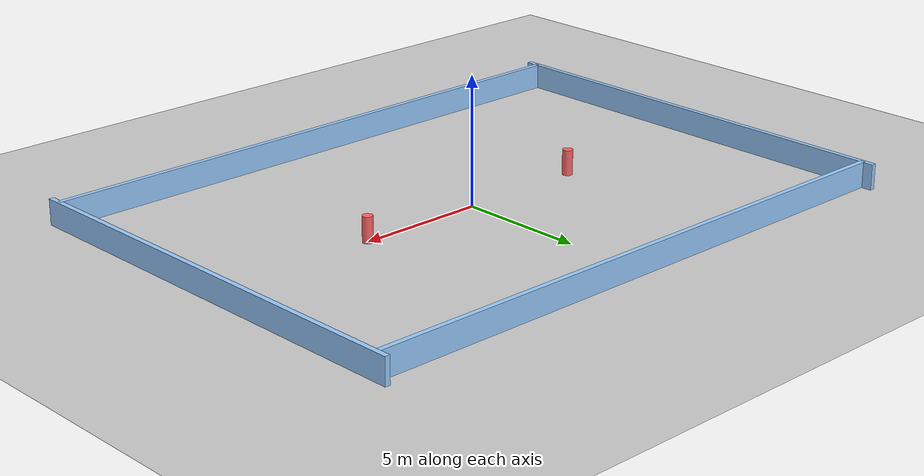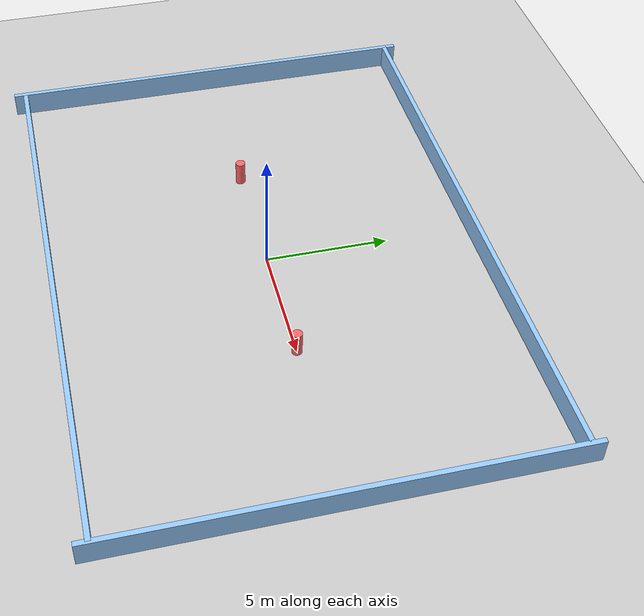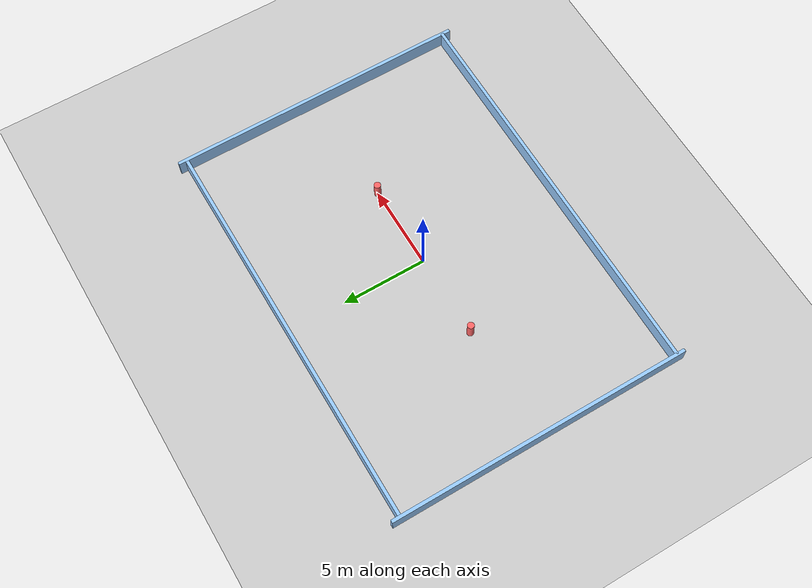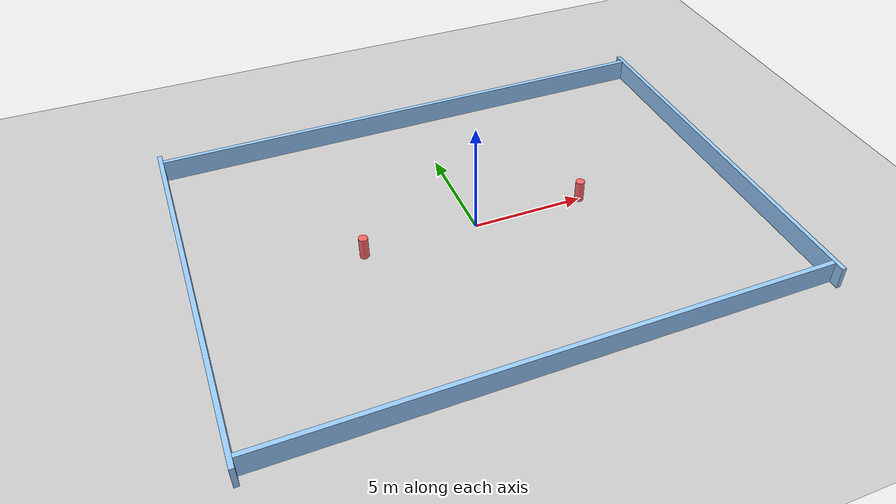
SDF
<?xml version="1.0" ?>
<sdf version="1.8">
  <world name="figure_8_walls">

    <physics name="1ms" type="ignored">
      <max_step_size>0.004</max_step_size>
      <real_time_factor>1.0</real_time_factor>
    </physics>

    <plugin filename="gz-sim-physics-system" name="gz::sim::systems::Physics"/>
    <plugin filename="gz-sim-user-commands-system" name="gz::sim::systems::UserCommands"/>
    <plugin filename="gz-sim-scene-broadcaster-system" name="gz::sim::systems::SceneBroadcaster"/>

    <light type="directional" name="sun">
      <cast_shadows>true</cast_shadows>
      <pose>0 0 10 0 0 0</pose>
      <diffuse>0.8 0.8 0.8 1</diffuse>
      <specular>0.2 0.2 0.2 1</specular>
      <direction>-0.5 0.1 -0.9</direction>
    </light>

    <model name="ground_plane">
      <static>true</static>
      <link name="link">
        <collision name="collision">
          <geometry><plane><normal>0 0 1</normal><size>100 100</size></plane></geometry>
          <surface><friction><ode><mu>100</mu><mu2>50</mu2></ode></friction></surface>
        </collision>
        <visual name="visual">
          <geometry><plane><normal>0 0 1</normal><size>100 100</size></plane></geometry>
          <material>
            <ambient>0.8 0.8 0.8 1</ambient>
            <diffuse>0.8 0.8 0.8 1</diffuse>
            <specular>0.8 0.8 0.8 1</specular>
          </material>
        </visual>
      </link>
    </model>

    <model name="wall_top">
      <static>true</static>
      <pose>0 8.5 0.5 0 0 0</pose>
      <link name="link">
        <collision name="c"><geometry><box><size>24.0 0.2 1</size></box></geometry></collision>
        <visual name="v">
          <geometry><box><size>24.0 0.2 1</size></box></geometry>
          <material><diffuse>0.6 0.8 1.0 1</diffuse></material> </visual>
      </link>
    </model>

    <model name="wall_bottom">
      <static>true</static>
      <pose>0 -8.5 0.5 0 0 0</pose>
      <link name="link">
        <collision name="c"><geometry><box><size>24.0 0.2 1</size></box></geometry></collision>
        <visual name="v">
          <geometry><box><size>24.0 0.2 1</size></box></geometry>
          <material><diffuse>0.6 0.8 1.0 1</diffuse></material>
        </visual>
      </link>
    </model>

    <model name="wall_left">
      <static>true</static>
      <pose>-12.0 0 0.5 0 0 0</pose>
      <link name="link">
        <collision name="c"><geometry><box><size>0.2 18.0 1</size></box></geometry></collision>
        <visual name="v">
          <geometry><box><size>0.2 18.0 1</size></box></geometry>
          <material><diffuse>0.6 0.8 1.0 1</diffuse></material>
        </visual>
      </link>
    </model>

    <model name="wall_right">
      <static>true</static>
      <pose>12.0 0 0.5 0 0 0</pose>
      <link name="link">
        <collision name="c"><geometry><box><size>0.2 18.0 1</size></box></geometry></collision>
        <visual name="v">
          <geometry><box><size>0.2 18.0 1</size></box></geometry>
          <material><diffuse>0.6 0.8 1.0 1</diffuse></material>
        </visual>
      </link>
    </model>

    <model name="cylinder_obstacle_1">
      <static>true</static>
      <pose>-5 0 0.5 0 0 0</pose>
      <link name="link">
        <collision name="c"><geometry><cylinder><radius>0.2</radius><length>1</length></cylinder></geometry></collision>
        <visual name="v">
          <geometry><cylinder><radius>0.2</radius><length>1</length></cylinder></geometry>
          <material><diffuse>1 0.4 0.4 1</diffuse></material> </visual>
      </link>
    </model>

    <model name="cylinder_obstacle_2">
      <static>true</static>
      <pose>5 0 0.5 0 0 0</pose>
      <link name="link">
        <collision name="c"><geometry><cylinder><radius>0.2</radius><length>1</length></cylinder></geometry></collision>
        <visual name="v">
          <geometry><cylinder><radius>0.2</radius><length>1</length></cylinder></geometry>
          <material><diffuse>1 0.4 0.4 1</diffuse></material> </visual>
      </link>
    </model>

  </world>
</sdf>
